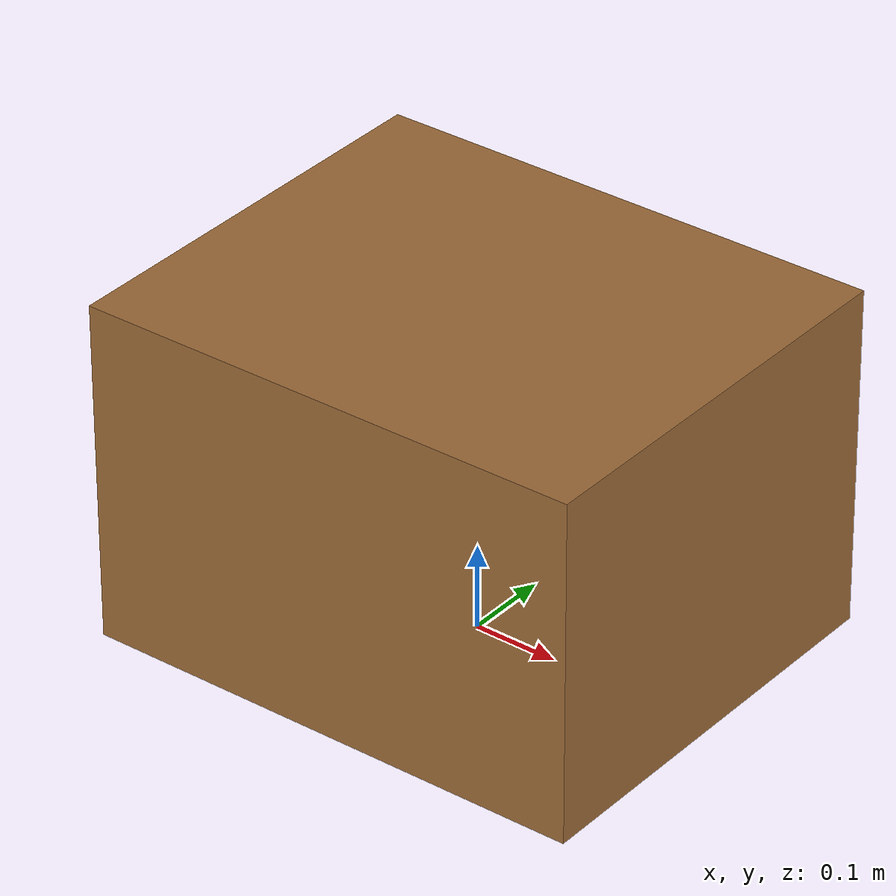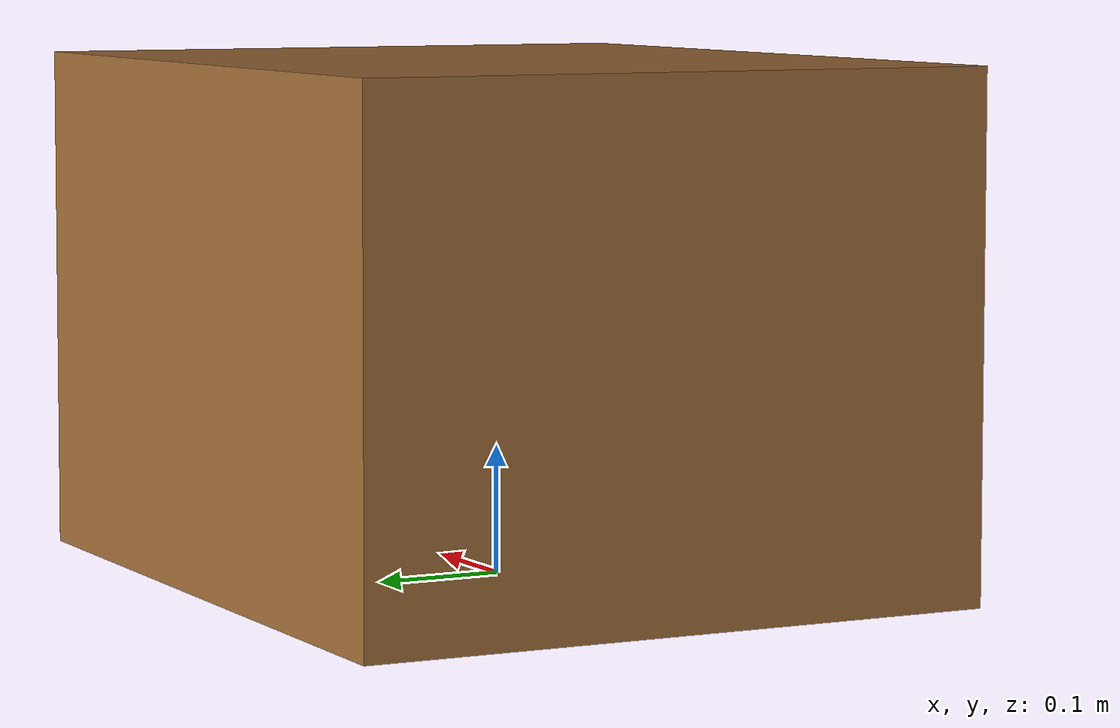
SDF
<?xml version="1.0" ?>
<!--
  대형 화물 상자: 0.60 x 0.50 x 0.40 m, 25.0 kg. 모델 원점 = 바닥 중심.
  관성: ixx = 25/12*(0.50^2+0.40^2) = 0.854167, iyy = 25/12*(0.60^2+0.40^2) = 1.083333, izz = 25/12*(0.60^2+0.50^2) = 1.270833
-->
<sdf version="1.8">
  <model name="box_large">
    <link name="link">
      <pose>0 0 0.20 0 0 0</pose>
      <inertial>
        <mass>25.0</mass>
        <inertia><ixx>0.854167</ixx><iyy>1.083333</iyy><izz>1.270833</izz><ixy>0</ixy><ixz>0</ixz><iyz>0</iyz></inertia>
      </inertial>
      <collision name="collision">
        <geometry><box><size>0.60 0.50 0.40</size></box></geometry>
        <surface><friction><ode><mu>0.6</mu><mu2>0.6</mu2></ode></friction></surface>
      </collision>
      <visual name="visual">
        <geometry><box><size>0.60 0.50 0.40</size></box></geometry>
        <material>
          <ambient>0.62 0.42 0.22 1</ambient>
          <diffuse>0.62 0.42 0.22 1</diffuse>
        </material>
      </visual>
    </link>
  </model>
</sdf>
